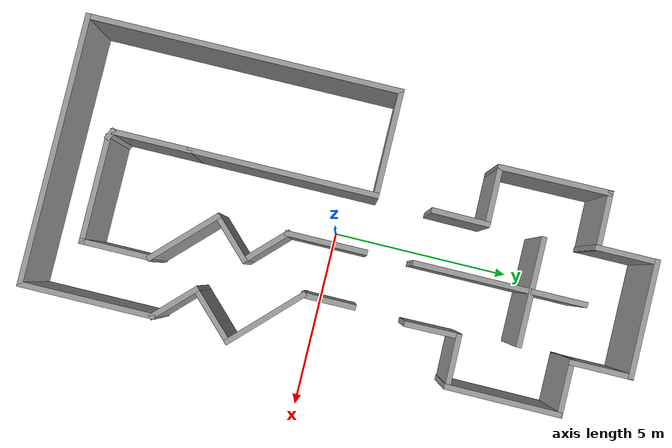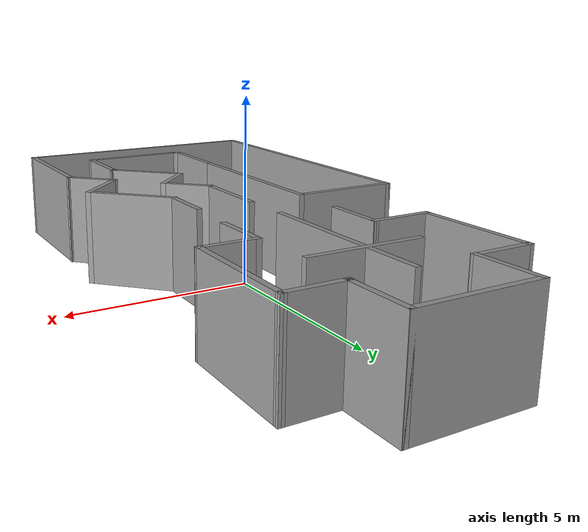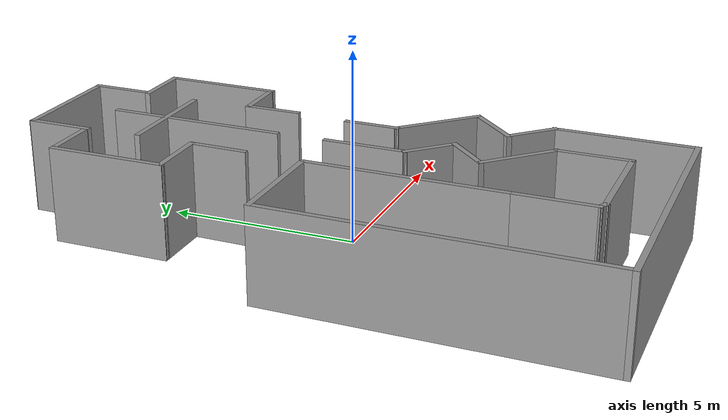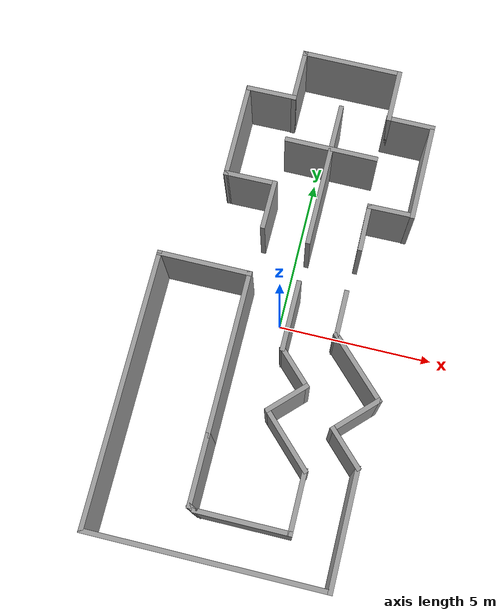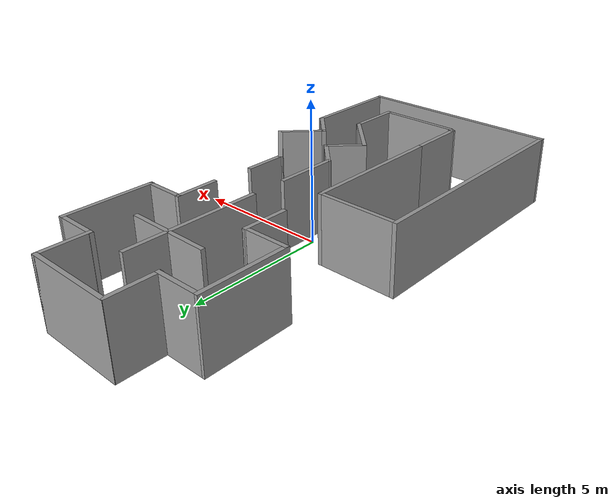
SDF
<?xml version='1.0'?>
<sdf version='1.6'>
  <model name='navigation'>
    <pose frame=''>-0.222576 0.346584 0 0 -0 0</pose>
    <link name='Wall_38'>
      <collision name='Wall_38_Collision'>
        <geometry>
          <box>
            <size>1.60654 0.15 2.5</size>
          </box>
        </geometry>
        <pose frame=''>0 0 1.25 0 -0 0</pose>
      </collision>
      <visual name='Wall_38_Visual'>
        <pose frame=''>0 0 1.25 0 -0 0</pose>
        <geometry>
          <box>
            <size>1.60654 0.15 2.5</size>
          </box>
        </geometry>
        <material>
          <script>
            <uri>file://media/materials/scripts/gazebo.material</uri>
            <name>Gazebo/Grey</name>
          </script>
          <ambient>1 1 1 1</ambient>
        </material>
        <meta>
          <layer>0</layer>
        </meta>
      </visual>
      <pose frame=''>-0.886672 2.79571 0 0 -0 1.56035</pose>
    </link>
    <link name='Wall_39'>
      <collision name='Wall_39_Collision'>
        <geometry>
          <box>
            <size>1.67403 0.15 2.5</size>
          </box>
        </geometry>
        <pose frame=''>0 0 1.25 0 -0 0</pose>
      </collision>
      <visual name='Wall_39_Visual'>
        <pose frame=''>0 0 1.25 0 -0 0</pose>
        <geometry>
          <box>
            <size>1.67403 0.15 2.5</size>
          </box>
        </geometry>
        <material>
          <script>
            <uri>file://media/materials/scripts/gazebo.material</uri>
            <name>Gazebo/Grey</name>
          </script>
          <ambient>1 1 1 1</ambient>
        </material>
        <meta>
          <layer>0</layer>
        </meta>
      </visual>
      <pose frame=''>-1.65626 3.51634 0 0 -0 -3.13161</pose>
    </link>
    <link name='Wall_40'>
      <collision name='Wall_40_Collision'>
        <geometry>
          <box>
            <size>3.14358 0.15 2.5</size>
          </box>
        </geometry>
        <pose frame=''>0 0 1.25 0 -0 0</pose>
      </collision>
      <visual name='Wall_40_Visual'>
        <pose frame=''>0 0 1.25 0 -0 0</pose>
        <geometry>
          <box>
            <size>3.14358 0.15 2.5</size>
          </box>
        </geometry>
        <material>
          <script>
            <uri>file://media/materials/scripts/gazebo.material</uri>
            <name>Gazebo/Grey</name>
          </script>
          <ambient>1 1 1 1</ambient>
        </material>
        <meta>
          <layer>0</layer>
        </meta>
      </visual>
      <pose frame=''>-2.44105 5.0055 0 0 -0 1.57588</pose>
    </link>
    <link name='Wall_41'>
      <collision name='Wall_41_Collision'>
        <geometry>
          <box>
            <size>1.62175 0.15 2.5</size>
          </box>
        </geometry>
        <pose frame=''>0 0 1.25 0 -0 0</pose>
      </collision>
      <visual name='Wall_41_Visual'>
        <pose frame=''>0 0 1.25 0 -0 0</pose>
        <geometry>
          <box>
            <size>1.62175 0.15 2.5</size>
          </box>
        </geometry>
        <material>
          <script>
            <uri>file://media/materials/scripts/gazebo.material</uri>
            <name>Gazebo/Grey</name>
          </script>
          <ambient>1 1 1 1</ambient>
        </material>
        <meta>
          <layer>0</layer>
        </meta>
      </visual>
      <pose frame=''>-1.69761 6.50988 0 0 -0 0.010334</pose>
    </link>
    <link name='Wall_42'>
      <collision name='Wall_42_Collision'>
        <geometry>
          <box>
            <size>1.75 0.15 2.5</size>
          </box>
        </geometry>
        <pose frame=''>0 0 1.25 0 -0 0</pose>
      </collision>
      <visual name='Wall_42_Visual'>
        <pose frame=''>0 0 1.25 0 -0 0</pose>
        <geometry>
          <box>
            <size>1.75 0.15 2.5</size>
          </box>
        </geometry>
        <material>
          <script>
            <uri>file://media/materials/scripts/gazebo.material</uri>
            <name>Gazebo/Grey</name>
          </script>
          <ambient>1 1 1 1</ambient>
        </material>
        <meta>
          <layer>0</layer>
        </meta>
      </visual>
      <pose frame=''>-0.961771 7.30227 0 0 -0 1.5708</pose>
    </link>
    <link name='Wall_43'>
      <collision name='Wall_43_Collision'>
        <geometry>
          <box>
            <size>3.24145 0.15 2.5</size>
          </box>
        </geometry>
        <pose frame=''>0 0 1.25 0 -0 0</pose>
      </collision>
      <visual name='Wall_43_Visual'>
        <pose frame=''>0 0 1.25 0 -0 0</pose>
        <geometry>
          <box>
            <size>3.24145 0.15 2.5</size>
          </box>
        </geometry>
        <material>
          <script>
            <uri>file://media/materials/scripts/gazebo.material</uri>
            <name>Gazebo/Grey</name>
          </script>
          <ambient>1 1 1 1</ambient>
        </material>
        <meta>
          <layer>0</layer>
        </meta>
      </visual>
      <pose frame=''>0.583954 8.11748 0 0 -0 0</pose>
    </link>
    <link name='Wall_44'>
      <collision name='Wall_44_Collision'>
        <geometry>
          <box>
            <size>1.75 0.15 2.5</size>
          </box>
        </geometry>
        <pose frame=''>0 0 1.25 0 -0 0</pose>
      </collision>
      <visual name='Wall_44_Visual'>
        <pose frame=''>0 0 1.25 0 -0 0</pose>
        <geometry>
          <box>
            <size>1.75 0.15 2.5</size>
          </box>
        </geometry>
        <material>
          <script>
            <uri>file://media/materials/scripts/gazebo.material</uri>
            <name>Gazebo/Grey</name>
          </script>
          <ambient>1 1 1 1</ambient>
        </material>
        <meta>
          <layer>0</layer>
        </meta>
      </visual>
      <pose frame=''>2.14489 7.31748 0 0 -0 -1.5708</pose>
    </link>
    <link name='Wall_45'>
      <collision name='Wall_45_Collision'>
        <geometry>
          <box>
            <size>1.57604 0.15 2.5</size>
          </box>
        </geometry>
        <pose frame=''>0 0 1.25 0 -0 0</pose>
      </collision>
      <visual name='Wall_45_Visual'>
        <pose frame=''>0 0 1.25 0 -0 0</pose>
        <geometry>
          <box>
            <size>1.57604 0.15 2.5</size>
          </box>
        </geometry>
        <material>
          <script>
            <uri>file://media/materials/scripts/gazebo.material</uri>
            <name>Gazebo/Grey</name>
          </script>
          <ambient>1 1 1 1</ambient>
        </material>
        <meta>
          <layer>0</layer>
        </meta>
      </visual>
      <pose frame=''>2.8427 6.51748 0 0 -0 0</pose>
    </link>
    <link name='Wall_46'>
      <collision name='Wall_46_Collision'>
        <geometry>
          <box>
            <size>3.19775 0.15 2.5</size>
          </box>
        </geometry>
        <pose frame=''>0 0 1.25 0 -0 0</pose>
      </collision>
      <visual name='Wall_46_Visual'>
        <pose frame=''>0 0 1.25 0 -0 0</pose>
        <geometry>
          <box>
            <size>3.19775 0.15 2.5</size>
          </box>
        </geometry>
        <material>
          <script>
            <uri>file://media/materials/scripts/gazebo.material</uri>
            <name>Gazebo/Grey</name>
          </script>
          <ambient>1 1 1 1</ambient>
        </material>
        <meta>
          <layer>0</layer>
        </meta>
      </visual>
      <pose frame=''>3.54812 4.99362 0 0 -0 -1.57579</pose>
    </link>
    <link name='Wall_47'>
      <collision name='Wall_47_Collision'>
        <geometry>
          <box>
            <size>1.50009 0.15 2.5</size>
          </box>
        </geometry>
        <pose frame=''>0 0 1.25 0 -0 0</pose>
      </collision>
      <visual name='Wall_47_Visual'>
        <pose frame=''>0 0 1.25 0 -0 0</pose>
        <geometry>
          <box>
            <size>1.50009 0.15 2.5</size>
          </box>
        </geometry>
        <material>
          <script>
            <uri>file://media/materials/scripts/gazebo.material</uri>
            <name>Gazebo/Grey</name>
          </script>
          <ambient>1 1 1 1</ambient>
        </material>
        <meta>
          <layer>0</layer>
        </meta>
      </visual>
      <pose frame=''>2.86551 3.47737 0 0 -0 -3.13033</pose>
    </link>
    <link name='Wall_48'>
      <collision name='Wall_48_Collision'>
        <geometry>
          <box>
            <size>1.55237 0.15 2.5</size>
          </box>
        </geometry>
        <pose frame=''>0 0 1.25 0 -0 0</pose>
      </collision>
      <visual name='Wall_48_Visual'>
        <pose frame=''>0 0 1.25 0 -0 0</pose>
        <geometry>
          <box>
            <size>1.55237 0.15 2.5</size>
          </box>
        </geometry>
        <material>
          <script>
            <uri>file://media/materials/scripts/gazebo.material</uri>
            <name>Gazebo/Grey</name>
          </script>
          <ambient>1 1 1 1</ambient>
        </material>
        <meta>
          <layer>0</layer>
        </meta>
      </visual>
      <pose frame=''>2.18291 2.76863 0 0 -0 -1.55995</pose>
    </link>
    <link name='Wall_50'>
      <collision name='Wall_50_Collision'>
        <geometry>
          <box>
            <size>4.75 0.15 2.5</size>
          </box>
        </geometry>
        <pose frame=''>0 0 1.25 0 -0 0</pose>
      </collision>
      <visual name='Wall_50_Visual'>
        <pose frame=''>0 0 1.25 0 -0 0</pose>
        <geometry>
          <box>
            <size>4.75 0.15 2.5</size>
          </box>
        </geometry>
        <material>
          <script>
            <uri>file://media/materials/scripts/gazebo.material</uri>
            <name>Gazebo/Grey</name>
          </script>
          <ambient>1 1 1 1</ambient>
        </material>
        <meta>
          <layer>0</layer>
        </meta>
      </visual>
      <pose frame=''>0.580972 4.20844 0 0 -0 -1.5708</pose>
    </link>
    <link name='Wall_52'>
      <collision name='Wall_52_Collision'>
        <geometry>
          <box>
            <size>3 0.15 2.5</size>
          </box>
        </geometry>
        <pose frame=''>0 0 1.25 0 -0 0</pose>
      </collision>
      <visual name='Wall_52_Visual'>
        <pose frame=''>0 0 1.25 0 -0 0</pose>
        <geometry>
          <box>
            <size>3 0.15 2.5</size>
          </box>
        </geometry>
        <material>
          <script>
            <uri>file://media/materials/scripts/gazebo.material</uri>
            <name>Gazebo/Grey</name>
          </script>
          <ambient>1 1 1 1</ambient>
        </material>
        <meta>
          <layer>0</layer>
        </meta>
      </visual>
      <pose frame=''>0.591558 5.06361 0 0 -0 0</pose>
    </link>
    <link name='Wall_54'>
      <collision name='Wall_54_Collision'>
        <geometry>
          <box>
            <size>1.5 0.15 2.5</size>
          </box>
        </geometry>
        <pose frame=''>0 0 1.25 0 -0 0</pose>
      </collision>
      <visual name='Wall_54_Visual'>
        <pose frame=''>0 0 1.25 0 -0 0</pose>
        <geometry>
          <box>
            <size>1.5 0.15 2.5</size>
          </box>
        </geometry>
        <material>
          <script>
            <uri>file://media/materials/scripts/gazebo.material</uri>
            <name>Gazebo/Grey</name>
          </script>
          <ambient>1 1 1 1</ambient>
        </material>
        <meta>
          <layer>0</layer>
        </meta>
      </visual>
      <pose frame=''>2.08616 -0.094815 0 0 -0 -1.5708</pose>
    </link>
    <link name='Wall_55'>
      <collision name='Wall_55_Collision'>
        <geometry>
          <box>
            <size>2.5 0.15 2.5</size>
          </box>
        </geometry>
        <pose frame=''>0 0 1.25 0 -0 0</pose>
      </collision>
      <visual name='Wall_55_Visual'>
        <pose frame=''>0 0 1.25 0 -0 0</pose>
        <geometry>
          <box>
            <size>2.5 0.15 2.5</size>
          </box>
        </geometry>
        <material>
          <script>
            <uri>file://media/materials/scripts/gazebo.material</uri>
            <name>Gazebo/Grey</name>
          </script>
          <ambient>1 1 1 1</ambient>
        </material>
        <meta>
          <layer>0</layer>
        </meta>
      </visual>
      <pose frame=''>2.91701 -1.60067 0 0 -0 -0.785398</pose>
    </link>
    <link name='Wall_56'>
      <collision name='Wall_56_Collision'>
        <geometry>
          <box>
            <size>1.75 0.15 2.5</size>
          </box>
        </geometry>
        <pose frame=''>0 0 1.25 0 -0 0</pose>
      </collision>
      <visual name='Wall_56_Visual'>
        <pose frame=''>0 0 1.25 0 -0 0</pose>
        <geometry>
          <box>
            <size>1.75 0.15 2.5</size>
          </box>
        </geometry>
        <material>
          <script>
            <uri>file://media/materials/scripts/gazebo.material</uri>
            <name>Gazebo/Grey</name>
          </script>
          <ambient>1 1 1 1</ambient>
        </material>
        <meta>
          <layer>0</layer>
        </meta>
      </visual>
      <pose frame=''>3.18217 -2.9972 0 0 -0 -2.35619</pose>
    </link>
    <link name='Wall_57'>
      <collision name='Wall_57_Collision'>
        <geometry>
          <box>
            <size>1.5 0.15 2.5</size>
          </box>
        </geometry>
        <pose frame=''>0 0 1.25 0 -0 0</pose>
      </collision>
      <visual name='Wall_57_Visual'>
        <pose frame=''>0 0 1.25 0 -0 0</pose>
        <geometry>
          <box>
            <size>1.5 0.15 2.5</size>
          </box>
        </geometry>
        <material>
          <script>
            <uri>file://media/materials/scripts/gazebo.material</uri>
            <name>Gazebo/Grey</name>
          </script>
          <ambient>1 1 1 1</ambient>
        </material>
        <meta>
          <layer>0</layer>
        </meta>
      </visual>
      <pose frame=''>3.09378 -4.04018 0 0 -0 -0.785398</pose>
    </link>
    <link name='Wall_59'>
      <collision name='Wall_59_Collision'>
        <geometry>
          <box>
            <size>2.25 0.15 2.5</size>
          </box>
        </geometry>
        <pose frame=''>0 0 1.25 0 -0 0</pose>
      </collision>
      <visual name='Wall_59_Visual'>
        <pose frame=''>0 0 1.25 0 -0 0</pose>
        <geometry>
          <box>
            <size>2.25 0.15 2.5</size>
          </box>
        </geometry>
        <material>
          <script>
            <uri>file://media/materials/scripts/gazebo.material</uri>
            <name>Gazebo/Grey</name>
          </script>
          <ambient>1 1 1 1</ambient>
        </material>
        <meta>
          <layer>0</layer>
        </meta>
      </visual>
      <pose frame=''>0.604955 -0.50949 0 0 -0 -1.5708</pose>
    </link>
    <link name='Wall_60'>
      <collision name='Wall_60_Collision'>
        <geometry>
          <box>
            <size>1.5 0.15 2.5</size>
          </box>
        </geometry>
        <pose frame=''>0 0 1.25 0 -0 0</pose>
      </collision>
      <visual name='Wall_60_Visual'>
        <pose frame=''>0 0 1.25 0 -0 0</pose>
        <geometry>
          <box>
            <size>1.5 0.15 2.5</size>
          </box>
        </geometry>
        <material>
          <script>
            <uri>file://media/materials/scripts/gazebo.material</uri>
            <name>Gazebo/Grey</name>
          </script>
          <ambient>1 1 1 1</ambient>
        </material>
        <meta>
          <layer>0</layer>
        </meta>
      </visual>
      <pose frame=''>1.08225 -2.03679 0 0 -0 -0.785398</pose>
    </link>
    <link name='Wall_61'>
      <collision name='Wall_61_Collision'>
        <geometry>
          <box>
            <size>1.5 0.15 2.5</size>
          </box>
        </geometry>
        <pose frame=''>0 0 1.25 0 -0 0</pose>
      </collision>
      <visual name='Wall_61_Visual'>
        <pose frame=''>0 0 1.25 0 -0 0</pose>
        <geometry>
          <box>
            <size>1.5 0.15 2.5</size>
          </box>
        </geometry>
        <material>
          <script>
            <uri>file://media/materials/scripts/gazebo.material</uri>
            <name>Gazebo/Grey</name>
          </script>
          <ambient>1 1 1 1</ambient>
        </material>
        <meta>
          <layer>0</layer>
        </meta>
      </visual>
      <pose frame=''>1.08225 -2.99138 0 0 -0 -2.35619</pose>
    </link>
    <link name='Wall_62'>
      <collision name='Wall_62_Collision'>
        <geometry>
          <box>
            <size>2.25 0.15 2.5</size>
          </box>
        </geometry>
        <pose frame=''>0 0 1.25 0 -0 0</pose>
      </collision>
      <visual name='Wall_62_Visual'>
        <pose frame=''>0 0 1.25 0 -0 0</pose>
        <geometry>
          <box>
            <size>2.25 0.15 2.5</size>
          </box>
        </geometry>
        <material>
          <script>
            <uri>file://media/materials/scripts/gazebo.material</uri>
            <name>Gazebo/Grey</name>
          </script>
          <ambient>1 1 1 1</ambient>
        </material>
        <meta>
          <layer>0</layer>
        </meta>
      </visual>
      <pose frame=''>1.34742 -4.21114 0 0 -0 -0.785398</pose>
    </link>
    <link name='Wall_64'>
      <collision name='Wall_64_Collision'>
        <geometry>
          <box>
            <size>2 0.15 2.5</size>
          </box>
        </geometry>
        <pose frame=''>0 0 1.25 0 -0 0</pose>
      </collision>
      <visual name='Wall_64_Visual'>
        <pose frame=''>0 0 1.25 0 -0 0</pose>
        <geometry>
          <box>
            <size>2 0.15 2.5</size>
          </box>
        </geometry>
        <material>
          <script>
            <uri>file://media/materials/scripts/gazebo.material</uri>
            <name>Gazebo/Grey</name>
          </script>
          <ambient>1 1 1 1</ambient>
        </material>
        <meta>
          <layer>0</layer>
        </meta>
      </visual>
      <pose frame=''>2.08988 -5.8786 0 0 -0 -1.5708</pose>
    </link>
    <link name='Wall_65'>
      <collision name='Wall_65_Collision'>
        <geometry>
          <box>
            <size>3 0.15 2.5</size>
          </box>
        </geometry>
        <pose frame=''>0 0 1.25 0 -0 0</pose>
      </collision>
      <visual name='Wall_65_Visual'>
        <pose frame=''>0 0 1.25 0 -0 0</pose>
        <geometry>
          <box>
            <size>3 0.15 2.5</size>
          </box>
        </geometry>
        <material>
          <script>
            <uri>file://media/materials/scripts/gazebo.material</uri>
            <name>Gazebo/Grey</name>
          </script>
          <ambient>1 1 1 1</ambient>
        </material>
        <meta>
          <layer>0</layer>
        </meta>
      </visual>
      <pose frame=''>0.664879 -6.8036 0 0 -0 3.14159</pose>
    </link>
    <link name='Wall_67'>
      <collision name='Wall_67_Collision'>
        <geometry>
          <box>
            <size>3.75 0.15 2.5</size>
          </box>
        </geometry>
        <pose frame=''>0 0 1.25 0 -0 0</pose>
      </collision>
      <visual name='Wall_67_Visual'>
        <pose frame=''>0 0 1.25 0 -0 0</pose>
        <geometry>
          <box>
            <size>3.75 0.15 2.5</size>
          </box>
        </geometry>
        <material>
          <script>
            <uri>file://media/materials/scripts/gazebo.material</uri>
            <name>Gazebo/Grey</name>
          </script>
          <ambient>1 1 1 1</ambient>
        </material>
        <meta>
          <layer>0</layer>
        </meta>
      </visual>
      <pose frame=''>3.57108 -6.31748 0 0 -0 -1.5708</pose>
    </link>
    <link name='Wall_68'>
      <collision name='Wall_68_Collision'>
        <geometry>
          <box>
            <size>7.5 0.15 2.5</size>
          </box>
        </geometry>
        <pose frame=''>0 0 1.25 0 -0 0</pose>
      </collision>
      <visual name='Wall_68_Visual'>
        <pose frame=''>0 0 1.25 0 -0 0</pose>
        <geometry>
          <box>
            <size>7.5 0.15 2.5</size>
          </box>
        </geometry>
        <material>
          <script>
            <uri>file://media/materials/scripts/gazebo.material</uri>
            <name>Gazebo/Grey</name>
          </script>
          <ambient>1 1 1 1</ambient>
        </material>
        <meta>
          <layer>0</layer>
        </meta>
      </visual>
      <pose frame=''>-0.103921 -8.11748 0 0 -0 3.14159</pose>
    </link>
    <link name='Wall_69'>
      <collision name='Wall_69_Collision'>
        <geometry>
          <box>
            <size>8.75 0.15 2.5</size>
          </box>
        </geometry>
        <pose frame=''>0 0 1.25 0 -0 0</pose>
      </collision>
      <visual name='Wall_69_Visual'>
        <pose frame=''>0 0 1.25 0 -0 0</pose>
        <geometry>
          <box>
            <size>8.75 0.15 2.5</size>
          </box>
        </geometry>
        <material>
          <script>
            <uri>file://media/materials/scripts/gazebo.material</uri>
            <name>Gazebo/Grey</name>
          </script>
          <ambient>1 1 1 1</ambient>
        </material>
        <meta>
          <layer>0</layer>
        </meta>
      </visual>
      <pose frame=''>-3.77892 -3.81748 0 0 -0 1.5708</pose>
    </link>
    <link name='Wall_71'>
      <collision name='Wall_71_Collision'>
        <geometry>
          <box>
            <size>3 0.15 2.5</size>
          </box>
        </geometry>
        <pose frame=''>0 0 1.25 0 -0 0</pose>
      </collision>
      <visual name='Wall_71_Visual'>
        <pose frame=''>0 0 1.25 0 -0 0</pose>
        <geometry>
          <box>
            <size>3 0.15 2.5</size>
          </box>
        </geometry>
        <material>
          <script>
            <uri>file://media/materials/scripts/gazebo.material</uri>
            <name>Gazebo/Grey</name>
          </script>
          <ambient>1 1 1 1</ambient>
        </material>
        <meta>
          <layer>0</layer>
        </meta>
      </visual>
      <pose frame=''>-2.35392 0.482519 0 0 -0 0</pose>
    </link>
    <link name='Wall_72'>
      <collision name='Wall_72_Collision'>
        <geometry>
          <box>
            <size>5.25 0.15 2.5</size>
          </box>
        </geometry>
        <pose frame=''>0 0 1.25 0 -0 0</pose>
      </collision>
      <visual name='Wall_72_Visual'>
        <pose frame=''>0 0 1.25 0 -0 0</pose>
        <geometry>
          <box>
            <size>5.25 0.15 2.5</size>
          </box>
        </geometry>
        <material>
          <script>
            <uri>file://media/materials/scripts/gazebo.material</uri>
            <name>Gazebo/Grey</name>
          </script>
          <ambient>1 1 1 1</ambient>
        </material>
        <meta>
          <layer>0</layer>
        </meta>
      </visual>
      <pose frame=''>-0.928921 -2.06748 0 0 -0 -1.5708</pose>
    </link>
    <link name='Wall_74'>
      <collision name='Wall_74_Collision'>
        <geometry>
          <box>
            <size>2.25 0.15 2.5</size>
          </box>
        </geometry>
        <pose frame=''>0 0 1.25 0 -0 0</pose>
      </collision>
      <visual name='Wall_74_Visual'>
        <pose frame=''>0 0 1.25 0 -0 0</pose>
        <geometry>
          <box>
            <size>2.25 0.15 2.5</size>
          </box>
        </geometry>
        <material>
          <script>
            <uri>file://media/materials/scripts/gazebo.material</uri>
            <name>Gazebo/Grey</name>
          </script>
          <ambient>1 1 1 1</ambient>
        </material>
        <meta>
          <layer>0</layer>
        </meta>
      </visual>
      <pose frame=''>-0.928921 -5.66748 0 0 -0 -1.5708</pose>
    </link>
    <link name='Wall_75'>
      <collision name='Wall_75_Collision'>
        <geometry>
          <box>
            <size>0.3395 0.15 2.5</size>
          </box>
        </geometry>
        <pose frame=''>0 0 1.25 0 -0 0</pose>
      </collision>
      <visual name='Wall_75_Visual'>
        <pose frame=''>0 0 1.25 0 -0 0</pose>
        <geometry>
          <box>
            <size>0.3395 0.15 2.5</size>
          </box>
        </geometry>
        <material>
          <script>
            <uri>file://media/materials/scripts/gazebo.material</uri>
            <name>Gazebo/Grey</name>
          </script>
          <ambient>1 1 1 1</ambient>
        </material>
        <meta>
          <layer>0</layer>
        </meta>
      </visual>
      <pose frame=''>-0.844521 -6.76054 0 0 -0 -0.471774</pose>
    </link>
    <static>1</static>
  </model>
</sdf>
